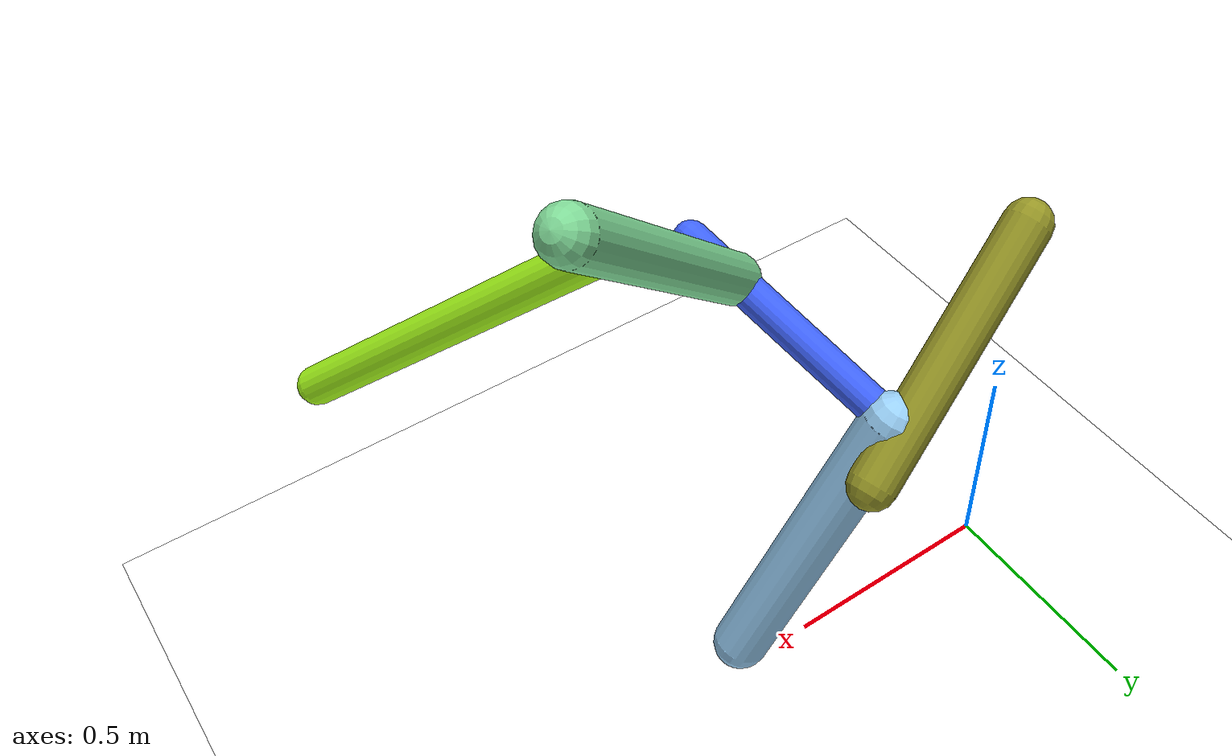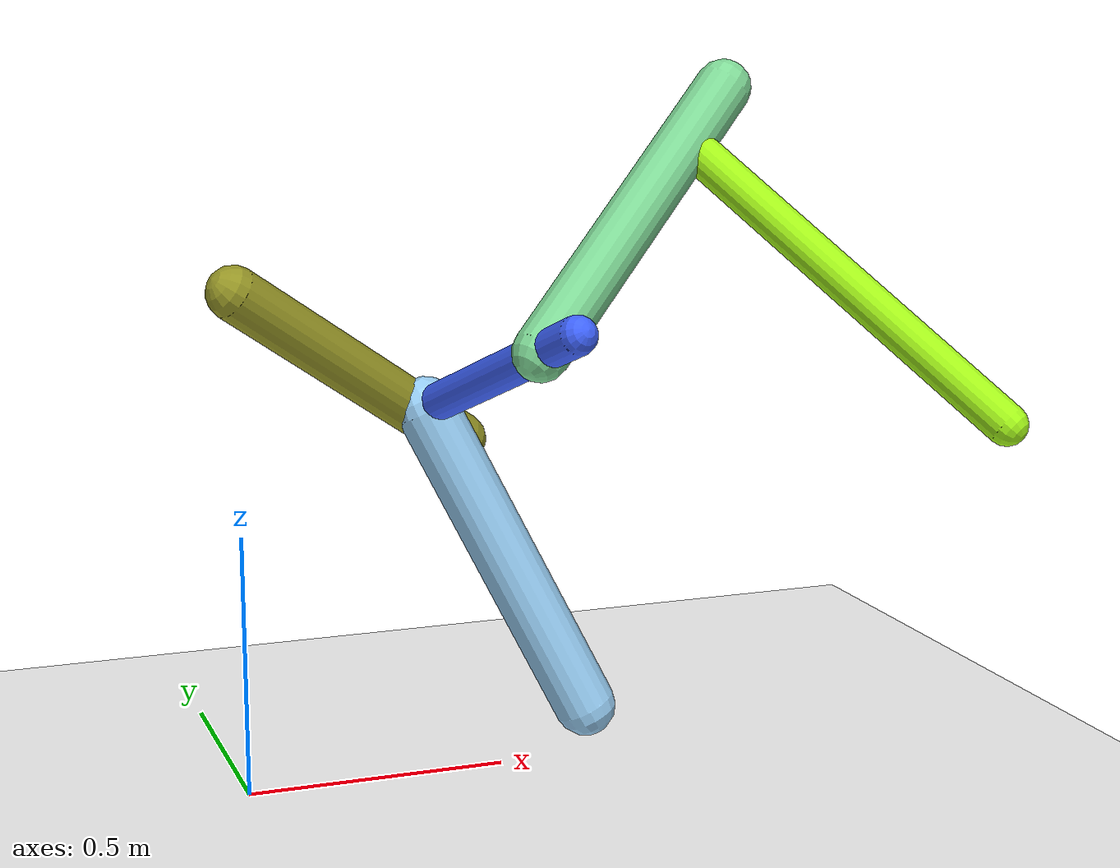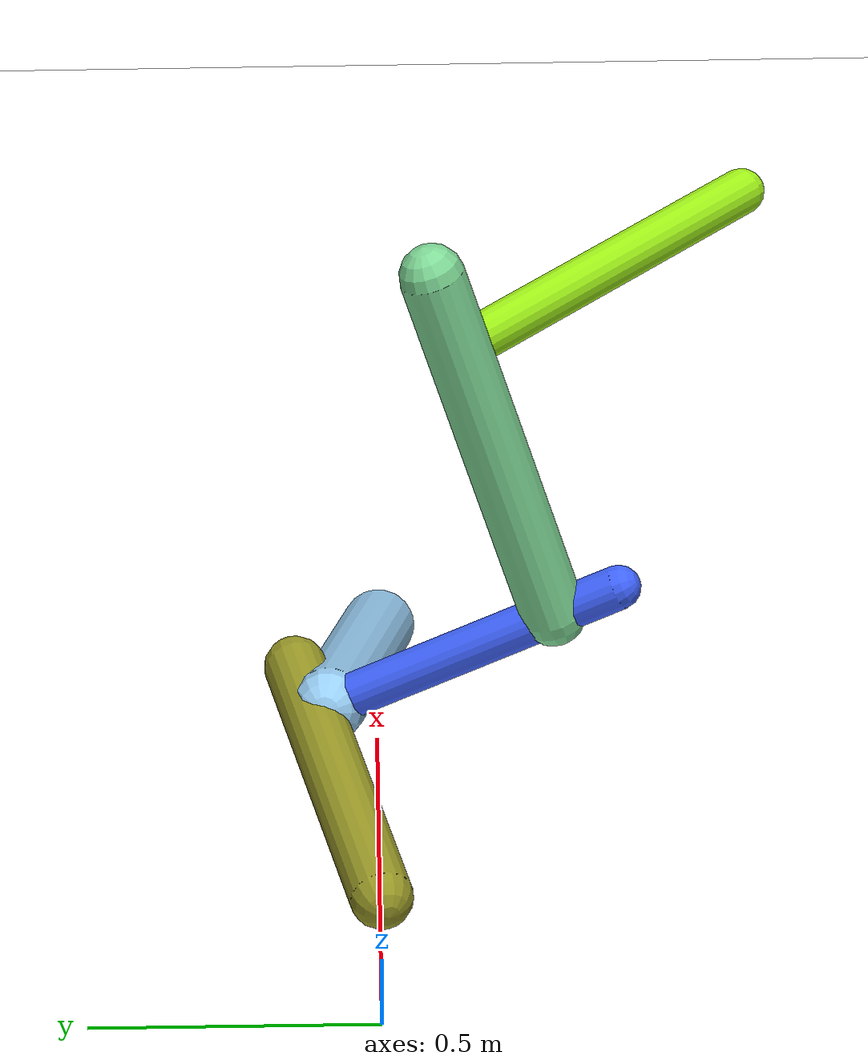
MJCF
<mujoco model="morphology">
  <option timestep="0.01"/>
  <default>
    <default class="/"/>
    <default class="0/"/>
    <default class="0/1/"/>
    <default class="0/1/2/"/>
    <default class="0/1/2/3/"/>
    <default class="0/1/4/"/>
  </default>
  <asset>
    <texture name="texplane" type="2d" builtin="checker" rgb1="0.10000000000000001 0.20000000000000001 0.29999999999999999" rgb2="0.20000000000000001 0.29999999999999999 0.40000000000000002" width="300" height="300"/>
    <material name="MatPlane" class="/" texture="texplane" texrepeat="20 20" specular="1" shininess="1" reflectance="0.5"/>
  </asset>
  <worldbody>
    <light name="//unnamed_light_0" class="/" directional="true" pos="0 0 1.5" dir="0 0 -1.3" cutoff="100" exponent="1" diffuse="1 1 1" specular="0.10000000000000001 0.10000000000000001 0.10000000000000001"/>
    <geom name="ground" class="/" type="plane" size="15 15 0.5" material="MatPlane" rgba="1 1 1 1"/>
    <site name="body" class="/" size="9.9999999999999995e-07 9.9999999999999995e-07 9.9999999999999995e-07" pos="0 0 0.95331773757934568"/>
    <body pos="0 0 0.95331773757934568" name="0/">
      <freejoint name="0/"/>
      <geom name="0/geom" class="0/" type="capsule" contype="1" conaffinity="1" condim="3" size="0.051437627755683266" rgba="0.58789656222649189 0.58686149574175928 0.14886906304708625 1" friction="0.59999999999999998 0.10000000000000001 0.10000000000000001" fromto="0 0 0 0.46445820432833851 0.1341855479573808 -0.32448435959540878"/>
      <site name="0/end0" class="0/" size="0.0050000000000000001" pos="0.46445820432833851 0.1341855479573808 -0.32448435959540878"/>
      <site name="0/attach1" class="0/" size="9.9999999999999995e-07 9.9999999999999995e-07 9.9999999999999995e-07" pos="0.37228366399774099 0.10755561422660039 -0.26008847550627456"/>
      <body pos="0.37228366399774099 0.10755561422660039 -0.26008847550627456" name="0/1/">
        <joint name="0/1/joint/" class="0/" type="hinge" axis="0 0 1" limited="true" range="-60.220127785072819 60.220127785072819"/>
        <geom name="0/1/geom" class="0/1/" type="capsule" contype="1" conaffinity="1" condim="3" size="0.036450500825833197" rgba="0.24621306264660769 0.39186227384299299 0.99520578450198938 1" friction="0.59999999999999998 0.10000000000000001 0.10000000000000001" fromto="0 0 0 0.14349519154230528 -0.49646269561793022 0.21137460821939125"/>
        <site name="0/1/end1" class="0/1/" size="0.0050000000000000001" pos="0.14349519154230528 -0.49646269561793022 0.21137460821939125"/>
        <site name="0/1/attach2" class="0/1/" size="9.9999999999999995e-07 9.9999999999999995e-07 9.9999999999999995e-07" pos="0.11333341728040205 -0.39210940270449285 0.16694501340657894"/>
        <body pos="0.11333341728040205 -0.39210940270449285 0.16694501340657894" name="0/1/2/">
          <joint name="0/1/2/joint/" class="0/1/" type="hinge" axis="2.7755575615628914e-17 0.39173386013352635 0.92007857426683226" limited="true" range="-53.960780856605702 53.960780856605702"/>
          <geom name="0/1/2/geom" class="0/1/2/" type="capsule" contype="1" conaffinity="1" condim="3" size="0.053013845774552065" rgba="0.49735813127030215 0.84968188069300232 0.58840940219572502 1" friction="0.59999999999999998 0.10000000000000001 0.10000000000000001" fromto="0 0 0 0.43076073806695625 0.19033053431533831 0.45120211368505925"/>
          <site name="0/1/2/end2" class="0/1/2/" size="0.0050000000000000001" pos="0.43076073806695625 0.19033053431533831 0.45120211368505925"/>
          <site name="0/1/2/attach3" class="0/1/2/" size="9.9999999999999995e-07 9.9999999999999995e-07 9.9999999999999995e-07" pos="0.33885991617719524 0.14972439037383053 0.35494021834117812"/>
          <body pos="0.33885991617719524 0.14972439037383053 0.35494021834117812" name="0/1/2/3/">
            <joint name="0/1/2/3/joint/" class="0/1/2/" type="hinge" axis="-0.75084880203531956 0.25670331982034056 0.60854702536068783" limited="true" range="-60.447370610713079 60.447370610713079"/>
            <geom name="0/1/2/3/geom" class="0/1/2/3/" type="capsule" contype="1" conaffinity="1" condim="3" size="0.038308798233435429" rgba="0.64152702157746877 0.96388942374866582 0.097715214491211899 1" friction="0.59999999999999998 0.10000000000000001 0.10000000000000001" fromto="0 0 0 0.40960272106644324 -0.47775010441663102 -0.47420972461776428"/>
            <site name="0/1/2/3/end3" class="0/1/2/3/" size="0.0050000000000000001" pos="0.40960272106644324 -0.47775010441663102 -0.47420972461776428"/>
          </body>
        </body>
        <site name="0/1/attach4" class="0/1/" size="9.9999999999999995e-07 9.9999999999999995e-07 9.9999999999999995e-07" pos="0.0081995987318286122 -0.028368859232393462 0.012078362702387222"/>
        <body pos="0.0081995987318286122 -0.028368859232393462 0.012078362702387222" name="0/1/4/">
          <joint name="0/1/4/joint/" class="0/1/" type="hinge" axis="2.7755575615628914e-17 0.39173386013352635 0.92007857426683226" limited="true" range="-64.266150674575982 64.266150674575982"/>
          <geom name="0/1/4/geom" class="0/1/4/" type="capsule" contype="1" conaffinity="1" condim="3" size="0.060652918152374308" rgba="0.59806913164381392 0.81167370104317793 0.9629845180655161 1" friction="0.59999999999999998 0.10000000000000001 0.10000000000000001" fromto="0 0 0 0.29502248620089366 -0.083709836544346716 -0.60530761084570128"/>
          <site name="0/1/4/end4" class="0/1/4/" size="0.0050000000000000001" pos="0.29502248620089366 -0.083709836544346716 -0.60530761084570128"/>
        </body>
      </body>
      <camera name="0/iso" class="0/" mode="trackcom" pos="-2.2999999999999998 -2.2999999999999998 1" xyaxes="0.45000000000000001 -0.45000000000000001 0 0.29999999999999999 0.14999999999999999 0.93999999999999995"/>
    </body>
  </worldbody>
  <actuator>
    <motor name="0/1/motor" class="0/1/" ctrllimited="true" ctrlrange="-1 1" gear="52" joint="0/1/joint/"/>
    <motor name="0/1/2/motor" class="0/1/2/" ctrllimited="true" ctrlrange="-1 1" gear="65" joint="0/1/2/joint/"/>
    <motor name="0/1/2/3/motor" class="0/1/2/3/" ctrllimited="true" ctrlrange="-1 1" gear="59" joint="0/1/2/3/joint/"/>
    <motor name="0/1/4/motor" class="0/1/4/" ctrllimited="true" ctrlrange="-1 1" gear="57" joint="0/1/4/joint/"/>
  </actuator>
  <sensor>
    <subtreelinvel name="velocity" body="0/"/>
  </sensor>
</mujoco>
